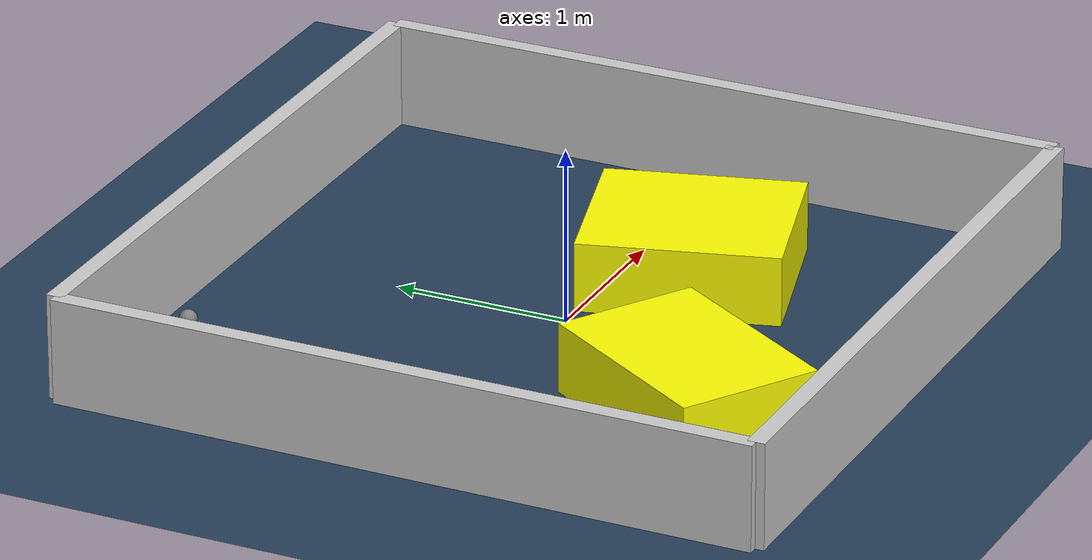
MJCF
<?xml version="1.0" ?>
<mujoco model="generated_environment">
  <option timestep="0.01" integrator="RK4" cone="elliptic"/>
  <default>
    <geom density="1"/>
  </default>
  <asset>
    <texture builtin="gradient" height="3072" rgb1="0.3 0.5 0.7" rgb2="0 0 0" type="skybox" width="512"/>
    <texture builtin="checker" height="300" mark="edge" markrgb="0.8 0.8 0.8" name="groundplane" rgb1="0.2 0.3 0.4" rgb2="0.1 0.2 0.3" type="2d" width="300"/>
    <material name="groundplane" reflectance="0.2" texrepeat="5 5" texture="groundplane" texuniform="true"/>
    <material name="robot" rgba="0.0 1.0 0.0 1"/>
  </asset>
  <worldbody>
    <light dir="0 0 -1" directional="true" pos="0 0 1.5"/>
    <geom condim="4" friction="1.0 0.005 0.001" material="groundplane" name="floor" size="0 0 0.05" type="plane"/>
    <body name="walls">
      <geom name="wall_1" condim="4" pos="-2.0 0.0 0.3" rgba="0.800000011920929 0.800000011920929 0.800000011920929 1.0" size="0.05 2.0 0.3" type="box"/>
      <geom name="wall_2" condim="4" pos="2.0 0.0 0.3" rgba="0.800000011920929 0.800000011920929 0.800000011920929 1.0" size="0.05 2.0 0.3" type="box"/>
      <geom name="wall_3" condim="4" pos="0.0 -2.0 0.3" rgba="0.800000011920929 0.800000011920929 0.800000011920929 1.0" size="2.0 0.05 0.3" type="box"/>
      <geom name="wall_4" condim="4" pos="0.0 2.0 0.3" rgba="0.800000011920929 0.800000011920929 0.800000011920929 1.0" size="2.0 0.05 0.3" type="box"/>
    </body>
    <body name="robot">
      <joint name="joint_x" type="slide" pos="0 0 0" axis="1 0 0"/>
      <joint name="joint_y" type="slide" pos="0 0 0" axis="0 1 0"/>
      <geom name="robot" type="sphere" pos="-1.200071693149373 1.6449518190903958 0.2" size="0.05" mass="5." friction="1.0 0.005 0.0001" condim="4"/>
      <site name="sensor_ball"/>
    </body>
    <body name="obstacle_1_movable">
      <geom name="obstacle_1_movable" condim="4" pos="0.766068389747844 -0.39224156639374486 0.2" euler="0 0 285.65212672792086" friction="1.0 0.005 0.001" rgba="1 1 0 1" size="0.5630395782934944 0.4992245490706079 0.2" type="box" mass="0.1"/>
      <joint type="free"/>
    </body>
    <body name="obstacle_2_movable">
      <geom name="obstacle_2_movable" condim="4" pos="-0.7624012177771069 -1.0605575203534778 0.2" euler="0 0 327.7489839421458" friction="1.0 0.005 0.001" rgba="1 1 0 1" size="0.41500316178199753 0.5975388242039611 0.2" type="box" mass="0.1"/>
      <joint type="free"/>
    </body>
  </worldbody>
  <actuator>
    <motor name="actuator_x" joint="joint_x" gear="1" ctrlrange="-1 1"/>
    <motor name="actuator_y" joint="joint_y" gear="1" ctrlrange="-1 1"/>
  </actuator>
</mujoco>
